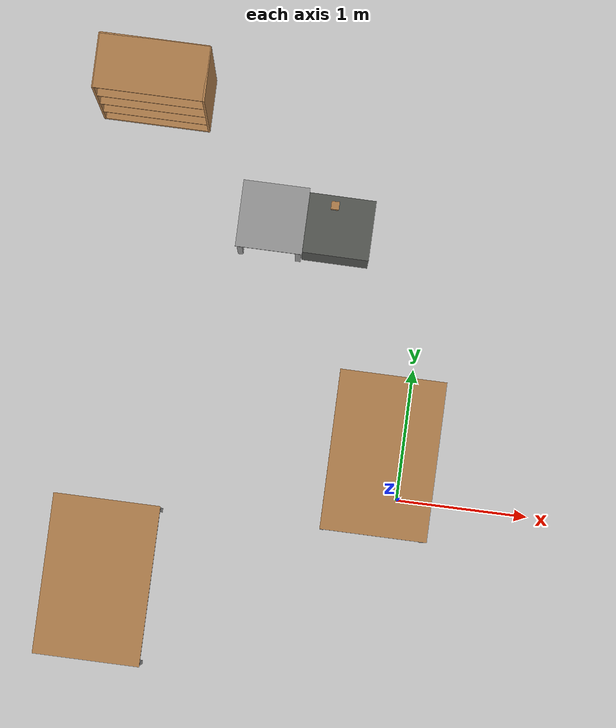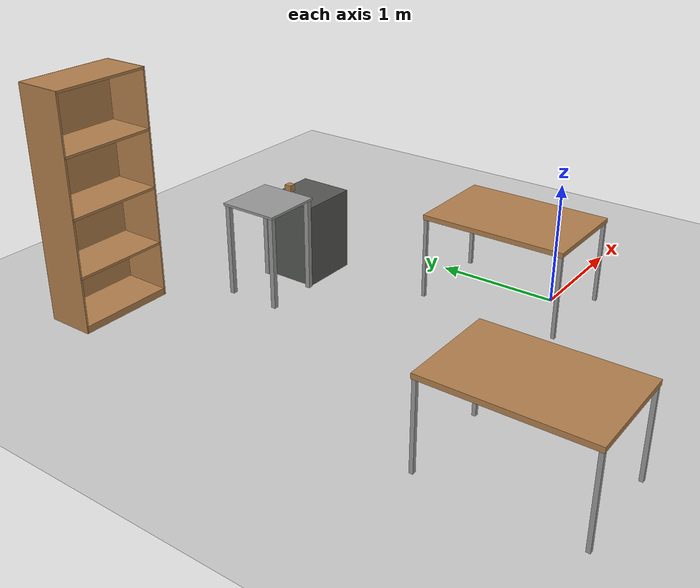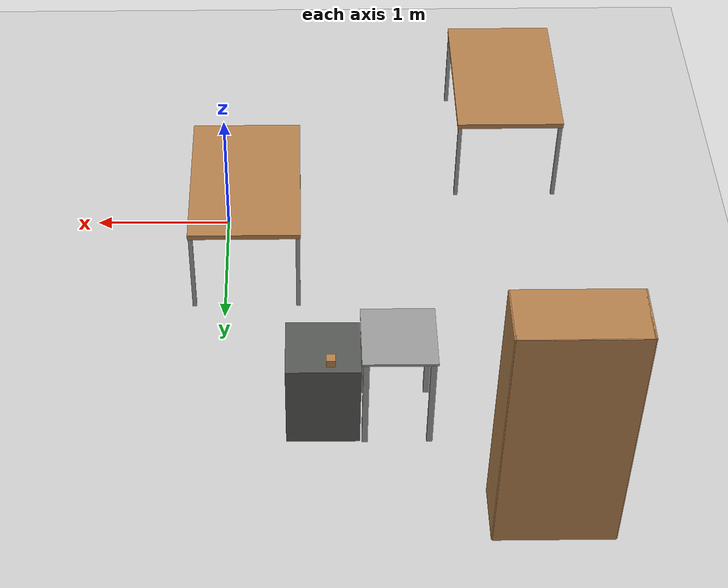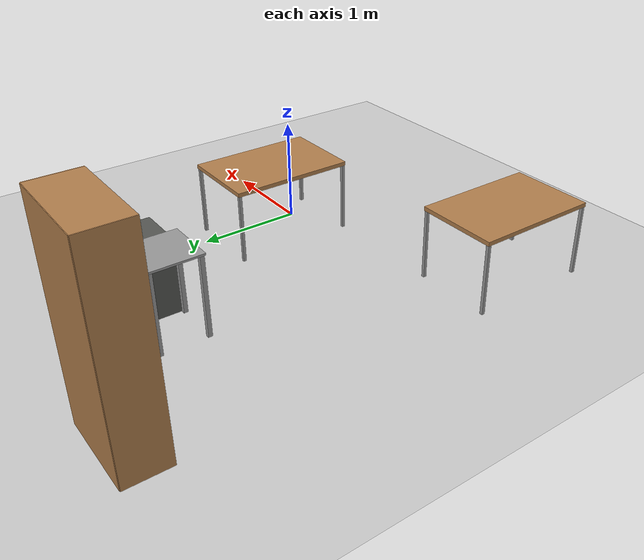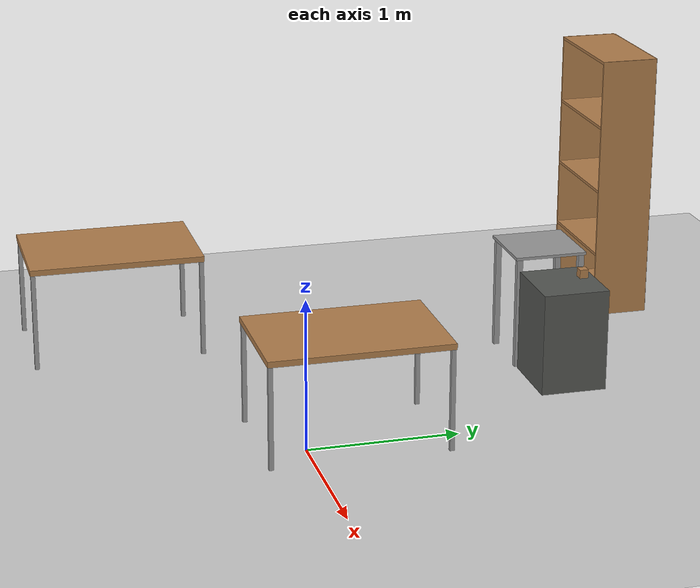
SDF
<sdf version="1.7">
 <world name="default">
  <model name="ground_plane">
   <static>1</static>
   <link name="link">
    <collision name="collision">
     <geometry><plane><normal>0 0 1</normal><size>100 100</size></plane></geometry>
     <surface>
      <contact><collide_bitmask>65535</collide_bitmask></contact>
      <friction><ode><mu>100</mu><mu2>50</mu2></ode></friction>
     </surface>
    </collision>
    <visual name="visual">
     <cast_shadows>0</cast_shadows>
     <geometry><plane><normal>0 0 1</normal><size>100 100</size></plane></geometry>
     <material>
      <script><uri>file://media/materials/scripts/gazebo.material</uri><name>Gazebo/Grey</name></script>
     </material>
    </visual>
   </link>
  </model>
  <model name="table_short_clone_clone">
   <link name="link">
    <inertial>
     <mass>1</mass>
     <inertia><ixx>1</ixx><ixy>0</ixy><ixz>0</ixz><iyy>1</iyy><iyz>0</iyz><izz>1</izz></inertia>
    </inertial>
    <visual name="front_right_leg">
     <pose>0.58 -0.38 0.35 0 -0 0</pose>
     <geometry><box><size>0.03 0.03 0.7</size></box></geometry>
     <material>
      <script><uri>file://media/materials/scripts/gazebo.material</uri><name>Gazebo/Grey</name></script>
      <shader type="pixel"><normal_map>__default__</normal_map></shader>
      <ambient>0.3 0.3 0.3 1</ambient>
      <diffuse>0.7 0.7 0.7 1</diffuse>
      <specular>0.01 0.01 0.01 1</specular>
      <emissive>0 0 0 1</emissive>
     </material>
    </visual>
    <visual name="back_left_leg">
     <pose>-0.58 0.38 0.35 0 -0 0</pose>
     <geometry><box><size>0.03 0.03 0.7</size></box></geometry>
     <material>
      <script><uri>file://media/materials/scripts/gazebo.material</uri><name>Gazebo/Grey</name></script>
      <shader type="pixel"><normal_map>__default__</normal_map></shader>
      <ambient>0.3 0.3 0.3 1</ambient>
      <diffuse>0.7 0.7 0.7 1</diffuse>
      <specular>0.01 0.01 0.01 1</specular>
      <emissive>0 0 0 1</emissive>
     </material>
    </visual>
    <visual name="front_left_leg">
     <pose>0.58 0.38 0.35 0 -0 0</pose>
     <geometry><box><size>0.03 0.03 0.7</size></box></geometry>
     <material>
      <script><uri>file://media/materials/scripts/gazebo.material</uri><name>Gazebo/Grey</name></script>
      <shader type="pixel"><normal_map>__default__</normal_map></shader>
      <ambient>0.3 0.3 0.3 1</ambient>
      <diffuse>0.7 0.7 0.7 1</diffuse>
      <specular>0.01 0.01 0.01 1</specular>
      <emissive>0 0 0 1</emissive>
     </material>
    </visual>
    <visual name="back_right_leg">
     <pose>-0.58 -0.38 0.35 0 -0 0</pose>
     <geometry><box><size>0.03 0.03 0.7</size></box></geometry>
     <material>
      <script><uri>file://media/materials/scripts/gazebo.material</uri><name>Gazebo/Grey</name></script>
      <shader type="pixel"><normal_map>__default__</normal_map></shader>
      <ambient>0.3 0.3 0.3 1</ambient>
      <diffuse>0.7 0.7 0.7 1</diffuse>
      <specular>0.01 0.01 0.01 1</specular>
      <emissive>0 0 0 1</emissive>
     </material>
    </visual>
    <visual name="visual1">
     <pose>0 0 0.7 0 -0 0</pose>
     <geometry><box><size>1.2 0.8 0.04</size></box></geometry>
     <material>
      <script><uri>file://media/materials/scripts/gazebo.material</uri><name>Gazebo/Wood</name></script>
      <shader type="pixel"><normal_map>__default__</normal_map></shader>
      <ambient>1 1 1 1</ambient>
      <diffuse>1 1 1 1</diffuse>
      <specular>0.2 0.2 0.2 1</specular>
      <emissive>0 0 0 1</emissive>
     </material>
    </visual>
    <collision name="front_right_leg">
     <pose>0.58 -0.38 0.35 0 -0 0</pose>
     <geometry><box><size>0.03 0.03 0.7</size></box></geometry>
     <surface>
      <friction>
       <ode><mu>1</mu><mu2>1</mu2><fdir1>0 0 0</fdir1><slip1>0</slip1><slip2>0</slip2></ode>
       <torsional>
        <coefficient>1</coefficient>
        <patch_radius>0</patch_radius>
        <surface_radius>0</surface_radius>
        <use_patch_radius>1</use_patch_radius>
        <ode><slip>0</slip></ode>
       </torsional>
      </friction>
      <bounce><restitution_coefficient>0</restitution_coefficient><threshold>1e+06</threshold></bounce>
      <contact>
       <collide_without_contact>0</collide_without_contact>
       <collide_without_contact_bitmask>1</collide_without_contact_bitmask>
       <collide_bitmask>1</collide_bitmask>
       <ode>
        <soft_cfm>0</soft_cfm>
        <soft_erp>0.2</soft_erp>
        <kp>1e+13</kp>
        <kd>1</kd>
        <max_vel>0.01</max_vel>
        <min_depth>0</min_depth>
       </ode>
       <bullet>
        <split_impulse>1</split_impulse>
        <split_impulse_penetration_threshold>-0.01</split_impulse_penetration_threshold>
        <soft_cfm>0</soft_cfm>
        <soft_erp>0.2</soft_erp>
        <kp>1e+13</kp>
        <kd>1</kd>
       </bullet>
      </contact>
     </surface>
    </collision>
    <collision name="back_left_leg">
     <pose>-0.58 0.38 0.35 0 -0 0</pose>
     <geometry><box><size>0.03 0.03 0.7</size></box></geometry>
     <surface>
      <friction>
       <ode><mu>1</mu><mu2>1</mu2><fdir1>0 0 0</fdir1><slip1>0</slip1><slip2>0</slip2></ode>
       <torsional>
        <coefficient>1</coefficient>
        <patch_radius>0</patch_radius>
        <surface_radius>0</surface_radius>
        <use_patch_radius>1</use_patch_radius>
        <ode><slip>0</slip></ode>
       </torsional>
      </friction>
      <bounce><restitution_coefficient>0</restitution_coefficient><threshold>1e+06</threshold></bounce>
      <contact>
       <collide_without_contact>0</collide_without_contact>
       <collide_without_contact_bitmask>1</collide_without_contact_bitmask>
       <collide_bitmask>1</collide_bitmask>
       <ode>
        <soft_cfm>0</soft_cfm>
        <soft_erp>0.2</soft_erp>
        <kp>1e+13</kp>
        <kd>1</kd>
        <max_vel>0.01</max_vel>
        <min_depth>0</min_depth>
       </ode>
       <bullet>
        <split_impulse>1</split_impulse>
        <split_impulse_penetration_threshold>-0.01</split_impulse_penetration_threshold>
        <soft_cfm>0</soft_cfm>
        <soft_erp>0.2</soft_erp>
        <kp>1e+13</kp>
        <kd>1</kd>
       </bullet>
      </contact>
     </surface>
    </collision>
    <collision name="back_right_leg">
     <pose>-0.58 -0.38 0.35 0 -0 0</pose>
     <geometry><box><size>0.03 0.03 0.7</size></box></geometry>
     <surface>
      <friction>
       <ode><mu>1</mu><mu2>1</mu2><fdir1>0 0 0</fdir1><slip1>0</slip1><slip2>0</slip2></ode>
       <torsional>
        <coefficient>1</coefficient>
        <patch_radius>0</patch_radius>
        <surface_radius>0</surface_radius>
        <use_patch_radius>1</use_patch_radius>
        <ode><slip>0</slip></ode>
       </torsional>
      </friction>
      <bounce><restitution_coefficient>0</restitution_coefficient><threshold>1e+06</threshold></bounce>
      <contact>
       <collide_without_contact>0</collide_without_contact>
       <collide_without_contact_bitmask>1</collide_without_contact_bitmask>
       <collide_bitmask>1</collide_bitmask>
       <ode>
        <soft_cfm>0</soft_cfm>
        <soft_erp>0.2</soft_erp>
        <kp>1e+13</kp>
        <kd>1</kd>
        <max_vel>0.01</max_vel>
        <min_depth>0</min_depth>
       </ode>
       <bullet>
        <split_impulse>1</split_impulse>
        <split_impulse_penetration_threshold>-0.01</split_impulse_penetration_threshold>
        <soft_cfm>0</soft_cfm>
        <soft_erp>0.2</soft_erp>
        <kp>1e+13</kp>
        <kd>1</kd>
       </bullet>
      </contact>
     </surface>
    </collision>
    <collision name="surface">
     <pose>0 0 0.7 0 -0 0</pose>
     <geometry><box><size>1.2 0.8 0.04</size></box></geometry>
     <surface>
      <friction>
       <ode><mu>0.6</mu><mu2>0.6</mu2><fdir1>0 0 0</fdir1><slip1>0</slip1><slip2>0</slip2></ode>
       <torsional>
        <coefficient>1</coefficient>
        <patch_radius>0</patch_radius>
        <surface_radius>0</surface_radius>
        <use_patch_radius>1</use_patch_radius>
        <ode><slip>0</slip></ode>
       </torsional>
      </friction>
      <bounce><restitution_coefficient>0</restitution_coefficient><threshold>1e+06</threshold></bounce>
      <contact>
       <collide_without_contact>0</collide_without_contact>
       <collide_without_contact_bitmask>1</collide_without_contact_bitmask>
       <collide_bitmask>1</collide_bitmask>
       <ode>
        <soft_cfm>0</soft_cfm>
        <soft_erp>0.2</soft_erp>
        <kp>1e+13</kp>
        <kd>1</kd>
        <max_vel>0.01</max_vel>
        <min_depth>0</min_depth>
       </ode>
       <bullet>
        <split_impulse>1</split_impulse>
        <split_impulse_penetration_threshold>-0.01</split_impulse_penetration_threshold>
        <soft_cfm>0</soft_cfm>
        <soft_erp>0.2</soft_erp>
        <kp>1e+13</kp>
        <kd>1</kd>
       </bullet>
      </contact>
     </surface>
    </collision>
    <collision name="front_left_leg">
     <pose>0.58 0.38 0.35 0 -0 0</pose>
     <geometry><box><size>0.03 0.03 0.699999</size></box></geometry>
     <surface>
      <friction>
       <ode><mu>1</mu><mu2>1</mu2><fdir1>0 0 0</fdir1><slip1>0</slip1><slip2>0</slip2></ode>
       <torsional>
        <coefficient>1</coefficient>
        <patch_radius>0</patch_radius>
        <surface_radius>0</surface_radius>
        <use_patch_radius>1</use_patch_radius>
        <ode><slip>0</slip></ode>
       </torsional>
      </friction>
      <bounce><restitution_coefficient>0</restitution_coefficient><threshold>1e+06</threshold></bounce>
      <contact>
       <collide_without_contact>0</collide_without_contact>
       <collide_without_contact_bitmask>1</collide_without_contact_bitmask>
       <collide_bitmask>1</collide_bitmask>
       <ode>
        <soft_cfm>0</soft_cfm>
        <soft_erp>0.2</soft_erp>
        <kp>1e+13</kp>
        <kd>1</kd>
        <max_vel>0.01</max_vel>
        <min_depth>0</min_depth>
       </ode>
       <bullet>
        <split_impulse>1</split_impulse>
        <split_impulse_penetration_threshold>-0.01</split_impulse_penetration_threshold>
        <soft_cfm>0</soft_cfm>
        <soft_erp>0.2</soft_erp>
        <kp>1e+13</kp>
        <kd>1</kd>
       </bullet>
      </contact>
     </surface>
    </collision>
   </link>
   <static>1</static>
   <pose>-0.154853 0.300944 0 0 -0 1.57</pose>
  </model>
  <model name="ur_base_modify">
   <link name="ur_base::top_plate">
    <pose>0 0 0.79 0 -0 0</pose>
    <inertial>
     <mass>1</mass>
     <inertia><ixx>1</ixx><ixy>0</ixy><ixz>0</ixz><iyy>1</iyy><iyz>0</iyz><izz>1</izz></inertia>
    </inertial>
    <visual name="top_plate_visual">
     <geometry><box><size>0.5 0.5 0.02</size></box></geometry>
     <material>
      <script><uri>model://media/materials/scripts/gazebo.material</uri><name>Gazebo/Grey</name></script>
      <shader type="pixel"><normal_map>__default__</normal_map></shader>
      <ambient>0.18 0.204 0.212 1</ambient>
      <diffuse>0.18 0.204 0.212 1</diffuse>
      <specular>0.18 0.204 0.212 1</specular>
      <emissive>0 0 0 1</emissive>
     </material>
    </visual>
    <collision name="top_plate_collision">
     <geometry><box><size>0.5 0.5 0.02</size></box></geometry>
     <surface>
      <friction>
       <ode><mu>1</mu><mu2>1</mu2><fdir1>0 0 0</fdir1><slip1>0</slip1><slip2>0</slip2></ode>
       <torsional>
        <coefficient>1</coefficient>
        <patch_radius>0</patch_radius>
        <surface_radius>0</surface_radius>
        <use_patch_radius>1</use_patch_radius>
        <ode><slip>0</slip></ode>
       </torsional>
      </friction>
      <bounce><restitution_coefficient>0</restitution_coefficient><threshold>1e+06</threshold></bounce>
      <contact>
       <collide_without_contact>0</collide_without_contact>
       <collide_without_contact_bitmask>1</collide_without_contact_bitmask>
       <collide_bitmask>1</collide_bitmask>
       <ode>
        <soft_cfm>0</soft_cfm>
        <soft_erp>0.2</soft_erp>
        <kp>1e+13</kp>
        <kd>1</kd>
        <max_vel>0.01</max_vel>
        <min_depth>0</min_depth>
       </ode>
       <bullet>
        <split_impulse>1</split_impulse>
        <split_impulse_penetration_threshold>-0.01</split_impulse_penetration_threshold>
        <soft_cfm>0</soft_cfm>
        <soft_erp>0.2</soft_erp>
        <kp>1e+13</kp>
        <kd>1</kd>
       </bullet>
      </contact>
     </surface>
    </collision>
   </link>
   <link name="ur_base::leg1">
    <pose>0.22 0.22 0.35 0 -0 0</pose>
    <inertial>
     <mass>1</mass>
     <inertia><ixx>1</ixx><ixy>0</ixy><ixz>0</ixz><iyy>1</iyy><iyz>0</iyz><izz>1</izz></inertia>
    </inertial>
    <visual name="leg1_visual">
     <geometry><box><size>0.04 0.04 0.79</size></box></geometry>
     <material>
      <script><uri>model://media/materials/scripts/gazebo.material</uri><name>Gazebo/Grey</name></script>
      <shader type="pixel"><normal_map>__default__</normal_map></shader>
      <ambient>0.3 0.3 0.3 1</ambient>
      <diffuse>0.7 0.7 0.7 1</diffuse>
      <specular>0.01 0.01 0.01 1</specular>
      <emissive>0 0 0 1</emissive>
     </material>
     <pose>0 0 0.05 0 -0 0</pose>
    </visual>
   </link>
   <link name="ur_base::leg2">
    <pose>-0.22 0.22 0.35 0 -0 0</pose>
    <inertial>
     <mass>1</mass>
     <inertia><ixx>1</ixx><ixy>0</ixy><ixz>0</ixz><iyy>1</iyy><iyz>0</iyz><izz>1</izz></inertia>
    </inertial>
    <visual name="leg2_visual">
     <geometry><box><size>0.04 0.04 0.79</size></box></geometry>
     <material>
      <script><uri>model://media/materials/scripts/gazebo.material</uri><name>Gazebo/Grey</name></script>
      <shader type="pixel"><normal_map>__default__</normal_map></shader>
      <ambient>0.3 0.3 0.3 1</ambient>
      <diffuse>0.7 0.7 0.7 1</diffuse>
      <specular>0.01 0.01 0.01 1</specular>
      <emissive>0 0 0 1</emissive>
     </material>
     <pose>0 0 0.05 0 -0 0</pose>
    </visual>
   </link>
   <link name="ur_base::leg3">
    <pose>0.22 -0.22 0.35 0 -0 0</pose>
    <inertial>
     <mass>1</mass>
     <pose>0 0 0.405 0 -0 0</pose>
     <inertia><ixx>1</ixx><ixy>0</ixy><ixz>0</ixz><iyy>1</iyy><iyz>0</iyz><izz>1</izz></inertia>
    </inertial>
    <visual name="leg3_visual">
     <geometry><box><size>0.04 0.04 0.79</size></box></geometry>
     <material>
      <script><uri>model://media/materials/scripts/gazebo.material</uri><name>Gazebo/Grey</name></script>
      <shader type="pixel"><normal_map>__default__</normal_map></shader>
      <ambient>0.3 0.3 0.3 1</ambient>
      <diffuse>0.7 0.7 0.7 1</diffuse>
      <specular>0.01 0.01 0.01 1</specular>
      <emissive>0 0 0 1</emissive>
     </material>
     <pose>0 0 0.05 0 -0 0</pose>
    </visual>
   </link>
   <link name="ur_base::leg4">
    <pose>-0.22 -0.22 0.35 0 -0 0</pose>
    <inertial>
     <mass>1</mass>
     <inertia><ixx>1</ixx><ixy>0</ixy><ixz>0</ixz><iyy>1</iyy><iyz>0</iyz><izz>1</izz></inertia>
    </inertial>
    <visual name="leg4_visual">
     <geometry><box><size>0.04 0.04 0.79</size></box></geometry>
     <material>
      <script><uri>model://media/materials/scripts/gazebo.material</uri><name>Gazebo/Grey</name></script>
      <shader type="pixel"><normal_map>__default__</normal_map></shader>
      <ambient>0.3 0.3 0.3 1</ambient>
      <diffuse>0.7 0.7 0.7 1</diffuse>
      <specular>0.01 0.01 0.01 1</specular>
      <emissive>0 0 0 1</emissive>
     </material>
     <pose>0 0 0.05 0 -0 0</pose>
    </visual>
   </link>
   <static>1</static>
   <pose>-1.2 1.95 0 0 -0 0</pose>
  </model>
  <model name="test_box">
   <link name="link">
    <inertial>
     <inertia><ixx>1</ixx><ixy>0</ixy><ixz>0</ixz><iyy>1</iyy><iyz>0</iyz><izz>1</izz></inertia>
     <mass>1</mass>
    </inertial>
    <visual name="visual">
     <geometry><box><size>0.5 0.45 0.7</size></box></geometry>
     <material>
      <shader type="pixel"><normal_map>__default__</normal_map></shader>
      <script><name>ModelPreview_21::link::visual_MATERIAL_</name><uri>__default__</uri></script>
      <ambient>0.533 0.541 0.522 1</ambient>
      <diffuse>0.333 0.341 0.325 1</diffuse>
      <specular>0.18 0.204 0.212 1</specular>
      <emissive>0 0 0 1</emissive>
     </material>
    </visual>
    <collision name="collision">
     <geometry><box><size>0.5 0.45 0.7</size></box></geometry>
     <surface>
      <friction>
       <ode><mu>1</mu><mu2>1</mu2><fdir1>0 0 0</fdir1><slip1>0</slip1><slip2>0</slip2></ode>
       <torsional>
        <coefficient>1</coefficient>
        <patch_radius>0</patch_radius>
        <surface_radius>0</surface_radius>
        <use_patch_radius>1</use_patch_radius>
        <ode><slip>0</slip></ode>
       </torsional>
      </friction>
      <bounce><restitution_coefficient>0</restitution_coefficient><threshold>1e+06</threshold></bounce>
      <contact>
       <collide_without_contact>0</collide_without_contact>
       <collide_without_contact_bitmask>1</collide_without_contact_bitmask>
       <collide_bitmask>1</collide_bitmask>
       <ode>
        <soft_cfm>0</soft_cfm>
        <soft_erp>0.2</soft_erp>
        <kp>1e+13</kp>
        <kd>1</kd>
        <max_vel>0.01</max_vel>
        <min_depth>0</min_depth>
       </ode>
       <bullet>
        <split_impulse>1</split_impulse>
        <split_impulse_penetration_threshold>-0.01</split_impulse_penetration_threshold>
        <soft_cfm>0</soft_cfm>
        <soft_erp>0.2</soft_erp>
        <kp>1e+13</kp>
        <kd>1</kd>
       </bullet>
      </contact>
     </surface>
    </collision>
   </link>
   <static>0</static>
   <pose>-0.7 1.95204 0.35 -0 2e-06 -0.004802</pose>
  </model>
  <model name="cube(6x6x6)">
   <link name="link">
    <pose>-0 -0 0.02 0 -0 0</pose>
    <inertial>
     <mass>0.0565</mass>
     <inertia>
      <ixx>2.354e-05</ixx>
      <ixy>0</ixy>
      <ixz>0</ixz>
      <iyy>2.354e-05</iyy>
      <iyz>0</iyz>
      <izz>2.354e-05</izz>
     </inertia>
    </inertial>
    <visual name="visual">
     <geometry><box><size>0.06 0.06 0.06</size></box></geometry>
     <material>
      <script><uri>model://media/materials/scripts/gazebo.material</uri><name>Gazebo/Wood</name></script>
      <shader type="pixel"><normal_map>__default__</normal_map></shader>
      <ambient>1 1 1 1</ambient>
      <diffuse>1 1 1 1</diffuse>
      <specular>0.2 0.2 0.2 1</specular>
      <emissive>0 0 0 1</emissive>
     </material>
    </visual>
    <collision name="collision">
     <geometry><box><size>0.06 0.06 0.06</size></box></geometry>
     <surface>
      <friction>
       <ode><mu>1</mu><mu2>1</mu2><fdir1>0 0 0</fdir1><slip1>0</slip1><slip2>0</slip2></ode>
       <torsional>
        <coefficient>1</coefficient>
        <patch_radius>0</patch_radius>
        <surface_radius>0.05</surface_radius>
        <use_patch_radius>0</use_patch_radius>
        <ode><slip>0</slip></ode>
       </torsional>
      </friction>
      <bounce><restitution_coefficient>0</restitution_coefficient><threshold>1e+06</threshold></bounce>
      <contact>
       <collide_without_contact>0</collide_without_contact>
       <collide_without_contact_bitmask>1</collide_without_contact_bitmask>
       <collide_bitmask>1</collide_bitmask>
       <ode>
        <soft_cfm>0</soft_cfm>
        <soft_erp>0.2</soft_erp>
        <kp>100000</kp>
        <kd>1</kd>
        <max_vel>1</max_vel>
        <min_depth>0.001</min_depth>
       </ode>
       <bullet>
        <split_impulse>1</split_impulse>
        <split_impulse_penetration_threshold>-0.01</split_impulse_penetration_threshold>
        <soft_cfm>0</soft_cfm>
        <soft_erp>0.2</soft_erp>
        <kp>100000</kp>
        <kd>1</kd>
       </bullet>
      </contact>
     </surface>
    </collision>
   </link>
   <static>0</static>
   <pose>-0.749998 2.1 0.709999 -4e-06 8e-06 -2e-05</pose>
  </model>
  <model name="table_short_clone_clone_1">
   <link name="link">
    <inertial>
     <mass>1</mass>
     <inertia><ixx>1</ixx><ixy>0</ixy><ixz>0</ixz><iyy>1</iyy><iyz>0</iyz><izz>1</izz></inertia>
    </inertial>
    <visual name="front_right_leg">
     <pose>0.58 -0.38 0.35 0 -0 0</pose>
     <geometry><box><size>0.03 0.03 0.7</size></box></geometry>
     <material>
      <script><uri>file://media/materials/scripts/gazebo.material</uri><name>Gazebo/Grey</name></script>
      <shader type="pixel"><normal_map>__default__</normal_map></shader>
      <ambient>0.3 0.3 0.3 1</ambient>
      <diffuse>0.7 0.7 0.7 1</diffuse>
      <specular>0.01 0.01 0.01 1</specular>
      <emissive>0 0 0 1</emissive>
     </material>
    </visual>
    <visual name="back_left_leg">
     <pose>-0.58 0.38 0.35 0 -0 0</pose>
     <geometry><box><size>0.03 0.03 0.7</size></box></geometry>
     <material>
      <script><uri>file://media/materials/scripts/gazebo.material</uri><name>Gazebo/Grey</name></script>
      <shader type="pixel"><normal_map>__default__</normal_map></shader>
      <ambient>0.3 0.3 0.3 1</ambient>
      <diffuse>0.7 0.7 0.7 1</diffuse>
      <specular>0.01 0.01 0.01 1</specular>
      <emissive>0 0 0 1</emissive>
     </material>
    </visual>
    <visual name="front_left_leg">
     <pose>0.58 0.38 0.35 0 -0 0</pose>
     <geometry><box><size>0.03 0.03 0.7</size></box></geometry>
     <material>
      <script><uri>file://media/materials/scripts/gazebo.material</uri><name>Gazebo/Grey</name></script>
      <shader type="pixel"><normal_map>__default__</normal_map></shader>
      <ambient>0.3 0.3 0.3 1</ambient>
      <diffuse>0.7 0.7 0.7 1</diffuse>
      <specular>0.01 0.01 0.01 1</specular>
      <emissive>0 0 0 1</emissive>
     </material>
    </visual>
    <visual name="back_right_leg">
     <pose>-0.58 -0.38 0.35 0 -0 0</pose>
     <geometry><box><size>0.03 0.03 0.7</size></box></geometry>
     <material>
      <script><uri>file://media/materials/scripts/gazebo.material</uri><name>Gazebo/Grey</name></script>
      <shader type="pixel"><normal_map>__default__</normal_map></shader>
      <ambient>0.3 0.3 0.3 1</ambient>
      <diffuse>0.7 0.7 0.7 1</diffuse>
      <specular>0.01 0.01 0.01 1</specular>
      <emissive>0 0 0 1</emissive>
     </material>
    </visual>
    <visual name="visual1">
     <pose>0 0 0.7 0 -0 0</pose>
     <geometry><box><size>1.2 0.8 0.04</size></box></geometry>
     <material>
      <script><uri>file://media/materials/scripts/gazebo.material</uri><name>Gazebo/Wood</name></script>
      <shader type="pixel"><normal_map>__default__</normal_map></shader>
      <ambient>1 1 1 1</ambient>
      <diffuse>1 1 1 1</diffuse>
      <specular>0.2 0.2 0.2 1</specular>
      <emissive>0 0 0 1</emissive>
     </material>
    </visual>
    <collision name="front_right_leg">
     <pose>0.58 -0.38 0.35 0 -0 0</pose>
     <geometry><box><size>0.03 0.03 0.7</size></box></geometry>
     <surface>
      <friction>
       <ode><mu>1</mu><mu2>1</mu2><fdir1>0 0 0</fdir1><slip1>0</slip1><slip2>0</slip2></ode>
       <torsional>
        <coefficient>1</coefficient>
        <patch_radius>0</patch_radius>
        <surface_radius>0</surface_radius>
        <use_patch_radius>1</use_patch_radius>
        <ode><slip>0</slip></ode>
       </torsional>
      </friction>
      <bounce><restitution_coefficient>0</restitution_coefficient><threshold>1e+06</threshold></bounce>
      <contact>
       <collide_without_contact>0</collide_without_contact>
       <collide_without_contact_bitmask>1</collide_without_contact_bitmask>
       <collide_bitmask>1</collide_bitmask>
       <ode>
        <soft_cfm>0</soft_cfm>
        <soft_erp>0.2</soft_erp>
        <kp>1e+13</kp>
        <kd>1</kd>
        <max_vel>0.01</max_vel>
        <min_depth>0</min_depth>
       </ode>
       <bullet>
        <split_impulse>1</split_impulse>
        <split_impulse_penetration_threshold>-0.01</split_impulse_penetration_threshold>
        <soft_cfm>0</soft_cfm>
        <soft_erp>0.2</soft_erp>
        <kp>1e+13</kp>
        <kd>1</kd>
       </bullet>
      </contact>
     </surface>
    </collision>
    <collision name="back_left_leg">
     <pose>-0.58 0.38 0.35 0 -0 0</pose>
     <geometry><box><size>0.03 0.03 0.7</size></box></geometry>
     <surface>
      <friction>
       <ode><mu>1</mu><mu2>1</mu2><fdir1>0 0 0</fdir1><slip1>0</slip1><slip2>0</slip2></ode>
       <torsional>
        <coefficient>1</coefficient>
        <patch_radius>0</patch_radius>
        <surface_radius>0</surface_radius>
        <use_patch_radius>1</use_patch_radius>
        <ode><slip>0</slip></ode>
       </torsional>
      </friction>
      <bounce><restitution_coefficient>0</restitution_coefficient><threshold>1e+06</threshold></bounce>
      <contact>
       <collide_without_contact>0</collide_without_contact>
       <collide_without_contact_bitmask>1</collide_without_contact_bitmask>
       <collide_bitmask>1</collide_bitmask>
       <ode>
        <soft_cfm>0</soft_cfm>
        <soft_erp>0.2</soft_erp>
        <kp>1e+13</kp>
        <kd>1</kd>
        <max_vel>0.01</max_vel>
        <min_depth>0</min_depth>
       </ode>
       <bullet>
        <split_impulse>1</split_impulse>
        <split_impulse_penetration_threshold>-0.01</split_impulse_penetration_threshold>
        <soft_cfm>0</soft_cfm>
        <soft_erp>0.2</soft_erp>
        <kp>1e+13</kp>
        <kd>1</kd>
       </bullet>
      </contact>
     </surface>
    </collision>
    <collision name="back_right_leg">
     <pose>-0.58 -0.38 0.35 0 -0 0</pose>
     <geometry><box><size>0.03 0.03 0.7</size></box></geometry>
     <surface>
      <friction>
       <ode><mu>1</mu><mu2>1</mu2><fdir1>0 0 0</fdir1><slip1>0</slip1><slip2>0</slip2></ode>
       <torsional>
        <coefficient>1</coefficient>
        <patch_radius>0</patch_radius>
        <surface_radius>0</surface_radius>
        <use_patch_radius>1</use_patch_radius>
        <ode><slip>0</slip></ode>
       </torsional>
      </friction>
      <bounce><restitution_coefficient>0</restitution_coefficient><threshold>1e+06</threshold></bounce>
      <contact>
       <collide_without_contact>0</collide_without_contact>
       <collide_without_contact_bitmask>1</collide_without_contact_bitmask>
       <collide_bitmask>1</collide_bitmask>
       <ode>
        <soft_cfm>0</soft_cfm>
        <soft_erp>0.2</soft_erp>
        <kp>1e+13</kp>
        <kd>1</kd>
        <max_vel>0.01</max_vel>
        <min_depth>0</min_depth>
       </ode>
       <bullet>
        <split_impulse>1</split_impulse>
        <split_impulse_penetration_threshold>-0.01</split_impulse_penetration_threshold>
        <soft_cfm>0</soft_cfm>
        <soft_erp>0.2</soft_erp>
        <kp>1e+13</kp>
        <kd>1</kd>
       </bullet>
      </contact>
     </surface>
    </collision>
    <collision name="surface">
     <pose>0 0 0.7 0 -0 0</pose>
     <geometry><box><size>1.2 0.8 0.04</size></box></geometry>
     <surface>
      <friction>
       <ode><mu>0.6</mu><mu2>0.6</mu2><fdir1>0 0 0</fdir1><slip1>0</slip1><slip2>0</slip2></ode>
       <torsional>
        <coefficient>1</coefficient>
        <patch_radius>0</patch_radius>
        <surface_radius>0</surface_radius>
        <use_patch_radius>1</use_patch_radius>
        <ode><slip>0</slip></ode>
       </torsional>
      </friction>
      <bounce><restitution_coefficient>0</restitution_coefficient><threshold>1e+06</threshold></bounce>
      <contact>
       <collide_without_contact>0</collide_without_contact>
       <collide_without_contact_bitmask>1</collide_without_contact_bitmask>
       <collide_bitmask>1</collide_bitmask>
       <ode>
        <soft_cfm>0</soft_cfm>
        <soft_erp>0.2</soft_erp>
        <kp>1e+13</kp>
        <kd>1</kd>
        <max_vel>0.01</max_vel>
        <min_depth>0</min_depth>
       </ode>
       <bullet>
        <split_impulse>1</split_impulse>
        <split_impulse_penetration_threshold>-0.01</split_impulse_penetration_threshold>
        <soft_cfm>0</soft_cfm>
        <soft_erp>0.2</soft_erp>
        <kp>1e+13</kp>
        <kd>1</kd>
       </bullet>
      </contact>
     </surface>
    </collision>
    <collision name="front_left_leg">
     <pose>0.58 0.38 0.35 0 -0 0</pose>
     <geometry><box><size>0.03 0.03 0.699999</size></box></geometry>
     <surface>
      <friction>
       <ode><mu>1</mu><mu2>1</mu2><fdir1>0 0 0</fdir1><slip1>0</slip1><slip2>0</slip2></ode>
       <torsional>
        <coefficient>1</coefficient>
        <patch_radius>0</patch_radius>
        <surface_radius>0</surface_radius>
        <use_patch_radius>1</use_patch_radius>
        <ode><slip>0</slip></ode>
       </torsional>
      </friction>
      <bounce><restitution_coefficient>0</restitution_coefficient><threshold>1e+06</threshold></bounce>
      <contact>
       <collide_without_contact>0</collide_without_contact>
       <collide_without_contact_bitmask>1</collide_without_contact_bitmask>
       <collide_bitmask>1</collide_bitmask>
       <ode>
        <soft_cfm>0</soft_cfm>
        <soft_erp>0.2</soft_erp>
        <kp>1e+13</kp>
        <kd>1</kd>
        <max_vel>0.01</max_vel>
        <min_depth>0</min_depth>
       </ode>
       <bullet>
        <split_impulse>1</split_impulse>
        <split_impulse_penetration_threshold>-0.01</split_impulse_penetration_threshold>
        <soft_cfm>0</soft_cfm>
        <soft_erp>0.2</soft_erp>
        <kp>1e+13</kp>
        <kd>1</kd>
       </bullet>
      </contact>
     </surface>
    </collision>
   </link>
   <static>1</static>
   <pose>-2.14637 -0.886144 0 0 -0 1.57</pose>
  </model>
  <model name="bookshelf_1.9m">
   <link name="link">
    <inertial>
     <mass>0.772235</mass>
     <inertia>
      <ixx>0.0103222</ixx>
      <ixy>0</ixy>
      <ixz>0</ixz>
      <iyy>0.0269147</iyy>
      <iyz>0</iyz>
      <izz>0.0371854</izz>
     </inertia>
    </inertial>
    <pose>0.146048 0 0 0 -0 0</pose>
    <visual name="ModelPreview_1::link::visual_8">
     <pose>0 -0.195 0.465 0 -0 0</pose>
     <geometry><box><size>0.8 0.4 0.02</size></box></geometry>
     <material>
      <script><uri>file://media/materials/scripts/gazebo.material</uri><name>Gazebo/Wood</name></script>
      <shader type="pixel"><normal_map>__default__</normal_map></shader>
      <ambient>1 1 1 1</ambient>
      <diffuse>1 1 1 1</diffuse>
      <specular>0.2 0.2 0.2 1</specular>
      <emissive>0 0 0 1</emissive>
     </material>
    </visual>
    <visual name="visual6">
     <pose>0 -0.195 1.89 0 -0 0</pose>
     <geometry><box><size>0.8 0.4 0.02</size></box></geometry>
     <material>
      <script><uri>file://media/materials/scripts/gazebo.material</uri><name>Gazebo/Wood</name></script>
      <shader type="pixel"><normal_map>__default__</normal_map></shader>
      <ambient>1 1 1 1</ambient>
      <diffuse>1 1 1 1</diffuse>
      <specular>0.2 0.2 0.2 1</specular>
      <emissive>0 0 0 1</emissive>
     </material>
    </visual>
    <visual name="visual5">
     <pose>0 -0.195 1.415 0 -0 0</pose>
     <geometry><box><size>0.8 0.4 0.02</size></box></geometry>
     <material>
      <script><uri>file://media/materials/scripts/gazebo.material</uri><name>Gazebo/Wood</name></script>
      <shader type="pixel"><normal_map>__default__</normal_map></shader>
      <ambient>1 1 1 1</ambient>
      <diffuse>1 1 1 1</diffuse>
      <specular>0.2 0.2 0.2 1</specular>
      <emissive>0 0 0 1</emissive>
     </material>
    </visual>
    <visual name="visual7">
     <pose>0 -0.195 0.94 0 -0 0</pose>
     <geometry><box><size>0.8 0.4 0.02</size></box></geometry>
     <material>
      <script><uri>file://media/materials/scripts/gazebo.material</uri><name>Gazebo/Wood</name></script>
      <shader type="pixel"><normal_map>__default__</normal_map></shader>
      <ambient>1 1 1 1</ambient>
      <diffuse>1 1 1 1</diffuse>
      <specular>0.2 0.2 0.2 1</specular>
      <emissive>0 0 0 1</emissive>
     </material>
    </visual>
    <visual name="visual4">
     <pose>0 -0.195 0.03 0 -0 0</pose>
     <geometry><box><size>0.8 0.4 0.06</size></box></geometry>
     <material>
      <script><uri>file://media/materials/scripts/gazebo.material</uri><name>Gazebo/Wood</name></script>
      <shader type="pixel"><normal_map>__default__</normal_map></shader>
      <ambient>1 1 1 1</ambient>
      <diffuse>1 1 1 1</diffuse>
      <specular>0.2 0.2 0.2 1</specular>
      <emissive>0 0 0 1</emissive>
     </material>
    </visual>
    <visual name="visual2">
     <pose>0.4 -0.195 0.95 0 -0 0</pose>
     <geometry><box><size>0.015482 0.4 1.9</size></box></geometry>
     <material>
      <script><uri>file://media/materials/scripts/gazebo.material</uri><name>Gazebo/Wood</name></script>
      <shader type="pixel"><normal_map>__default__</normal_map></shader>
      <ambient>1 1 1 1</ambient>
      <diffuse>1 1 1 1</diffuse>
      <specular>0.2 0.2 0.2 1</specular>
      <emissive>0 0 0 1</emissive>
     </material>
    </visual>
    <visual name="visual1">
     <pose>0 0.005 0.95 0 -0 0</pose>
     <geometry><box><size>0.8 0.010399 1.9</size></box></geometry>
     <material>
      <script><uri>file://media/materials/scripts/gazebo.material</uri><name>Gazebo/Wood</name></script>
      <shader type="pixel"><normal_map>__default__</normal_map></shader>
      <lighting>0</lighting>
      <emissive>0 0 0 1</emissive>
     </material>
    </visual>
    <visual name="visual3">
     <pose>-0.4 -0.195 0.95 0 -0 0</pose>
     <geometry><box><size>0.015482 0.4 1.9</size></box></geometry>
     <material>
      <script><uri>file://media/materials/scripts/gazebo.material</uri><name>Gazebo/Wood</name></script>
      <shader type="pixel"><normal_map>__default__</normal_map></shader>
      <ambient>1 1 1 1</ambient>
      <diffuse>1 1 1 1</diffuse>
      <specular>0.2 0.2 0.2 1</specular>
      <emissive>0 0 0 1</emissive>
     </material>
    </visual>
    <collision name="left_side">
     <pose>0.25 -0.195 0.6 0 -0 0</pose>
     <geometry><box><size>0.015482 0.4 1.2</size></box></geometry>
     <surface>
      <friction>
       <ode><mu>1</mu><mu2>1</mu2><fdir1>0 0 0</fdir1><slip1>0</slip1><slip2>0</slip2></ode>
       <torsional>
        <coefficient>1</coefficient>
        <patch_radius>0</patch_radius>
        <surface_radius>0</surface_radius>
        <use_patch_radius>1</use_patch_radius>
        <ode><slip>0</slip></ode>
       </torsional>
      </friction>
      <bounce><restitution_coefficient>0</restitution_coefficient><threshold>1e+06</threshold></bounce>
      <contact>
       <collide_without_contact>0</collide_without_contact>
       <collide_without_contact_bitmask>1</collide_without_contact_bitmask>
       <collide_bitmask>1</collide_bitmask>
       <ode>
        <soft_cfm>0</soft_cfm>
        <soft_erp>0.2</soft_erp>
        <kp>1e+13</kp>
        <kd>1</kd>
        <max_vel>0.01</max_vel>
        <min_depth>0</min_depth>
       </ode>
       <bullet>
        <split_impulse>1</split_impulse>
        <split_impulse_penetration_threshold>-0.01</split_impulse_penetration_threshold>
        <soft_cfm>0</soft_cfm>
        <soft_erp>0.2</soft_erp>
        <kp>1e+13</kp>
        <kd>1</kd>
       </bullet>
      </contact>
     </surface>
    </collision>
    <collision name="right_side">
     <pose>-0.25 -0.195 0.6 0 -0 0</pose>
     <geometry><box><size>0.015482 0.4 1.2</size></box></geometry>
     <surface>
      <friction>
       <ode><mu>1</mu><mu2>1</mu2><fdir1>0 0 0</fdir1><slip1>0</slip1><slip2>0</slip2></ode>
       <torsional>
        <coefficient>1</coefficient>
        <patch_radius>0</patch_radius>
        <surface_radius>0</surface_radius>
        <use_patch_radius>1</use_patch_radius>
        <ode><slip>0</slip></ode>
       </torsional>
      </friction>
      <bounce><restitution_coefficient>0</restitution_coefficient><threshold>1e+06</threshold></bounce>
      <contact>
       <collide_without_contact>0</collide_without_contact>
       <collide_without_contact_bitmask>1</collide_without_contact_bitmask>
       <collide_bitmask>1</collide_bitmask>
       <ode>
        <soft_cfm>0</soft_cfm>
        <soft_erp>0.2</soft_erp>
        <kp>1e+13</kp>
        <kd>1</kd>
        <max_vel>0.01</max_vel>
        <min_depth>0</min_depth>
       </ode>
       <bullet>
        <split_impulse>1</split_impulse>
        <split_impulse_penetration_threshold>-0.01</split_impulse_penetration_threshold>
        <soft_cfm>0</soft_cfm>
        <soft_erp>0.2</soft_erp>
        <kp>1e+13</kp>
        <kd>1</kd>
       </bullet>
      </contact>
     </surface>
    </collision>
    <collision name="bottom">
     <pose>0 -0.195 0.03 0 -0 0</pose>
     <geometry><box><size>0.5 0.4 0.06</size></box></geometry>
     <surface>
      <friction>
       <ode><mu>1</mu><mu2>1</mu2><fdir1>0 0 0</fdir1><slip1>0</slip1><slip2>0</slip2></ode>
       <torsional>
        <coefficient>1</coefficient>
        <patch_radius>0</patch_radius>
        <surface_radius>0</surface_radius>
        <use_patch_radius>1</use_patch_radius>
        <ode><slip>0</slip></ode>
       </torsional>
      </friction>
      <bounce><restitution_coefficient>0</restitution_coefficient><threshold>1e+06</threshold></bounce>
      <contact>
       <collide_without_contact>0</collide_without_contact>
       <collide_without_contact_bitmask>1</collide_without_contact_bitmask>
       <collide_bitmask>1</collide_bitmask>
       <ode>
        <soft_cfm>0</soft_cfm>
        <soft_erp>0.2</soft_erp>
        <kp>1e+13</kp>
        <kd>1</kd>
        <max_vel>0.01</max_vel>
        <min_depth>0</min_depth>
       </ode>
       <bullet>
        <split_impulse>1</split_impulse>
        <split_impulse_penetration_threshold>-0.01</split_impulse_penetration_threshold>
        <soft_cfm>0</soft_cfm>
        <soft_erp>0.2</soft_erp>
        <kp>1e+13</kp>
        <kd>1</kd>
       </bullet>
      </contact>
     </surface>
    </collision>
    <collision name="low_shelf">
     <pose>0 -0.195 0.43 0 -0 0</pose>
     <geometry><box><size>0.5 0.4 0.02</size></box></geometry>
     <surface>
      <friction>
       <ode><mu>1</mu><mu2>1</mu2><fdir1>0 0 0</fdir1><slip1>0</slip1><slip2>0</slip2></ode>
       <torsional>
        <coefficient>1</coefficient>
        <patch_radius>0</patch_radius>
        <surface_radius>0</surface_radius>
        <use_patch_radius>1</use_patch_radius>
        <ode><slip>0</slip></ode>
       </torsional>
      </friction>
      <bounce><restitution_coefficient>0</restitution_coefficient><threshold>1e+06</threshold></bounce>
      <contact>
       <collide_without_contact>0</collide_without_contact>
       <collide_without_contact_bitmask>1</collide_without_contact_bitmask>
       <collide_bitmask>1</collide_bitmask>
       <ode>
        <soft_cfm>0</soft_cfm>
        <soft_erp>0.2</soft_erp>
        <kp>1e+13</kp>
        <kd>1</kd>
        <max_vel>0.01</max_vel>
        <min_depth>0</min_depth>
       </ode>
       <bullet>
        <split_impulse>1</split_impulse>
        <split_impulse_penetration_threshold>-0.01</split_impulse_penetration_threshold>
        <soft_cfm>0</soft_cfm>
        <soft_erp>0.2</soft_erp>
        <kp>1e+13</kp>
        <kd>1</kd>
       </bullet>
      </contact>
     </surface>
    </collision>
    <collision name="high_shelf">
     <pose>0 -0.195 0.8 0 -0 0</pose>
     <geometry><box><size>0.5 0.4 0.02</size></box></geometry>
     <surface>
      <friction>
       <ode><mu>1</mu><mu2>1</mu2><fdir1>0 0 0</fdir1><slip1>0</slip1><slip2>0</slip2></ode>
       <torsional>
        <coefficient>1</coefficient>
        <patch_radius>0</patch_radius>
        <surface_radius>0</surface_radius>
        <use_patch_radius>1</use_patch_radius>
        <ode><slip>0</slip></ode>
       </torsional>
      </friction>
      <bounce><restitution_coefficient>0</restitution_coefficient><threshold>1e+06</threshold></bounce>
      <contact>
       <collide_without_contact>0</collide_without_contact>
       <collide_without_contact_bitmask>1</collide_without_contact_bitmask>
       <collide_bitmask>1</collide_bitmask>
       <ode>
        <soft_cfm>0</soft_cfm>
        <soft_erp>0.2</soft_erp>
        <kp>1e+13</kp>
        <kd>1</kd>
        <max_vel>0.01</max_vel>
        <min_depth>0</min_depth>
       </ode>
       <bullet>
        <split_impulse>1</split_impulse>
        <split_impulse_penetration_threshold>-0.01</split_impulse_penetration_threshold>
        <soft_cfm>0</soft_cfm>
        <soft_erp>0.2</soft_erp>
        <kp>1e+13</kp>
        <kd>1</kd>
       </bullet>
      </contact>
     </surface>
    </collision>
    <collision name="top">
     <pose>0 -0.195 1.19 0 -0 0</pose>
     <geometry><box><size>0.5 0.4 0.02</size></box></geometry>
     <surface>
      <friction>
       <ode><mu>1</mu><mu2>1</mu2><fdir1>0 0 0</fdir1><slip1>0</slip1><slip2>0</slip2></ode>
       <torsional>
        <coefficient>1</coefficient>
        <patch_radius>0</patch_radius>
        <surface_radius>0</surface_radius>
        <use_patch_radius>1</use_patch_radius>
        <ode><slip>0</slip></ode>
       </torsional>
      </friction>
      <bounce><restitution_coefficient>0</restitution_coefficient><threshold>1e+06</threshold></bounce>
      <contact>
       <collide_without_contact>0</collide_without_contact>
       <collide_without_contact_bitmask>1</collide_without_contact_bitmask>
       <collide_bitmask>1</collide_bitmask>
       <ode>
        <soft_cfm>0</soft_cfm>
        <soft_erp>0.2</soft_erp>
        <kp>1e+13</kp>
        <kd>1</kd>
        <max_vel>0.01</max_vel>
        <min_depth>0</min_depth>
       </ode>
       <bullet>
        <split_impulse>1</split_impulse>
        <split_impulse_penetration_threshold>-0.01</split_impulse_penetration_threshold>
        <soft_cfm>0</soft_cfm>
        <soft_erp>0.2</soft_erp>
        <kp>1e+13</kp>
        <kd>1</kd>
       </bullet>
      </contact>
     </surface>
    </collision>
    <collision name="back">
     <pose>0 0.005 0.6 0 -0 0</pose>
     <geometry><box><size>0.5 0.010399 1.2</size></box></geometry>
     <surface>
      <friction>
       <ode><mu>1</mu><mu2>1</mu2><fdir1>0 0 0</fdir1><slip1>0</slip1><slip2>0</slip2></ode>
       <torsional>
        <coefficient>1</coefficient>
        <patch_radius>0</patch_radius>
        <surface_radius>0</surface_radius>
        <use_patch_radius>1</use_patch_radius>
        <ode><slip>0</slip></ode>
       </torsional>
      </friction>
      <bounce><restitution_coefficient>0</restitution_coefficient><threshold>1e+06</threshold></bounce>
      <contact>
       <collide_without_contact>0</collide_without_contact>
       <collide_without_contact_bitmask>1</collide_without_contact_bitmask>
       <collide_bitmask>1</collide_bitmask>
       <ode>
        <soft_cfm>0</soft_cfm>
        <soft_erp>0.2</soft_erp>
        <kp>1e+13</kp>
        <kd>1</kd>
        <max_vel>0.01</max_vel>
        <min_depth>0</min_depth>
       </ode>
       <bullet>
        <split_impulse>1</split_impulse>
        <split_impulse_penetration_threshold>-0.01</split_impulse_penetration_threshold>
        <soft_cfm>0</soft_cfm>
        <soft_erp>0.2</soft_erp>
        <kp>1e+13</kp>
        <kd>1</kd>
       </bullet>
      </contact>
     </surface>
    </collision>
   </link>
   <static>1</static>
   <pose>-2.32634 3.00025 0 0 -0 0</pose>
  </model>
 </world>
</sdf>
